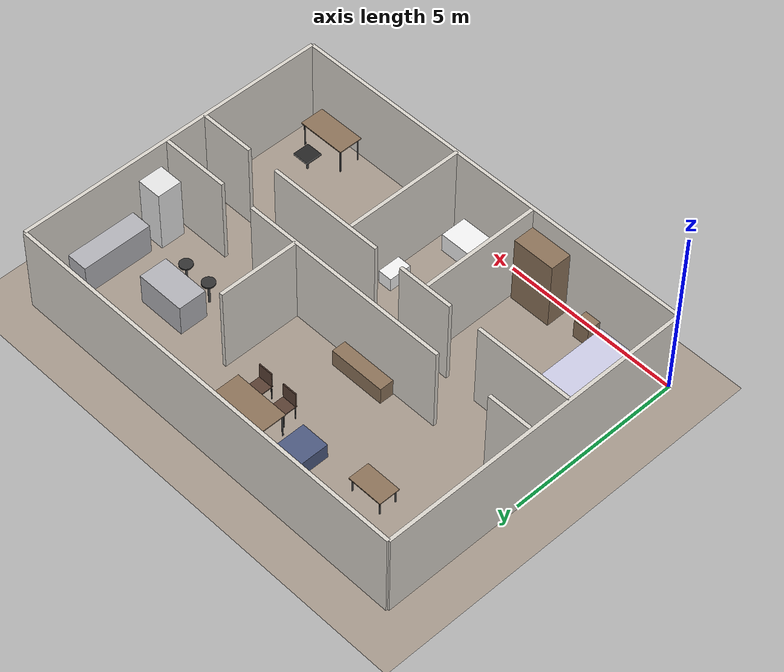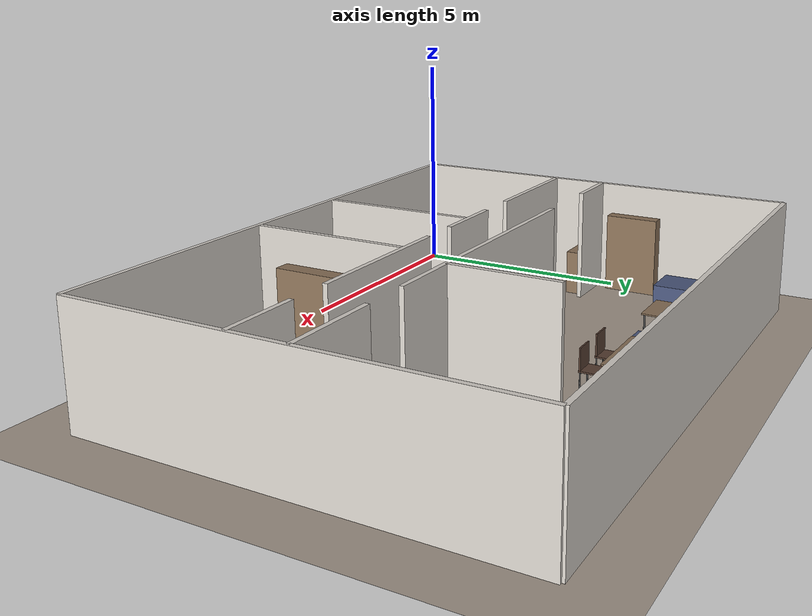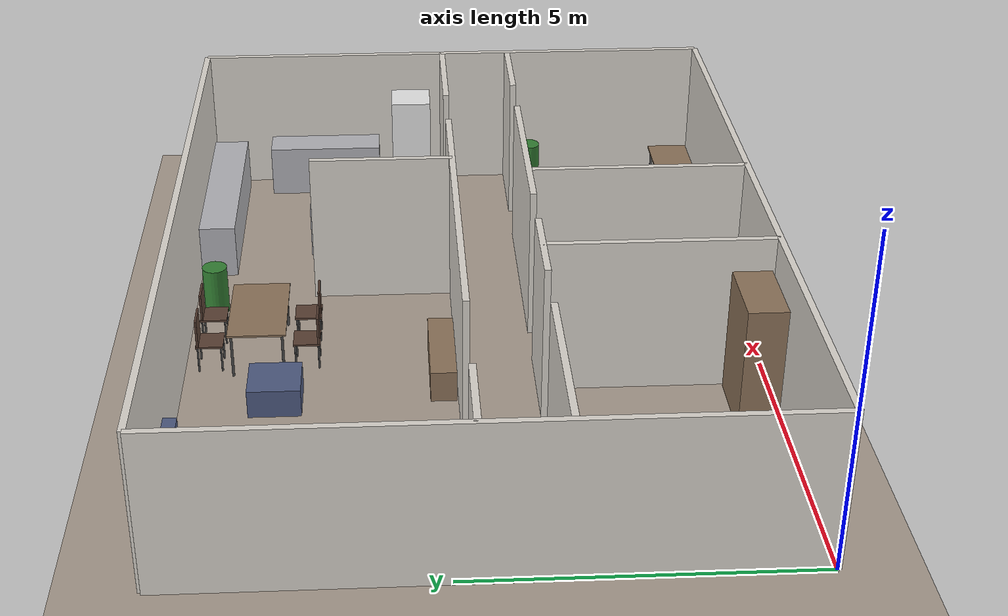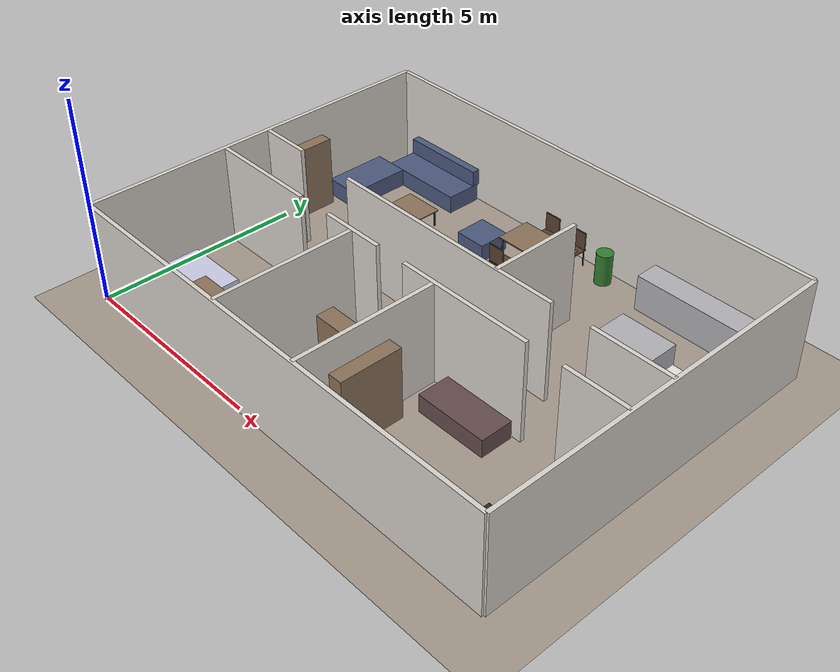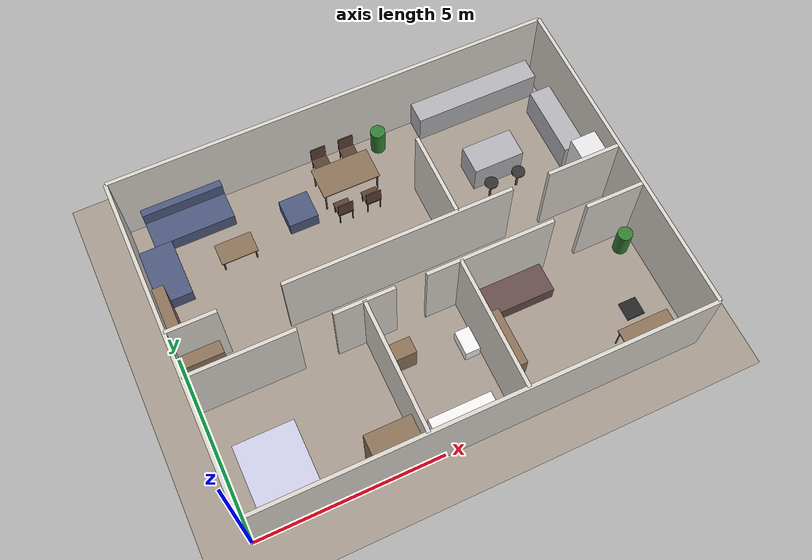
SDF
<?xml version="1.0"?>
<!-- GENERATED by worlds/generate_flat.py - edit that, not this.
     A furnished 12 x 9 m flat. Spawn the robot in the corridor at (6.0, 4.1). -->
<sdf version="1.9">
  <world name="flat">
    <!-- 4 ms steps; see house.sdf for why. -->
    <physics name="4ms" type="ignored">
      <max_step_size>0.004</max_step_size>
      <real_time_factor>1.0</real_time_factor>
    </physics>
    <plugin filename="gz-sim-physics-system" name="gz::sim::systems::Physics"/>
    <plugin filename="gz-sim-user-commands-system" name="gz::sim::systems::UserCommands"/>
    <plugin filename="gz-sim-scene-broadcaster-system" name="gz::sim::systems::SceneBroadcaster"/>
    <plugin filename="gz-sim-sensors-system" name="gz::sim::systems::Sensors">
      <render_engine>ogre2</render_engine>
    </plugin>
    <plugin filename="gz-sim-imu-system" name="gz::sim::systems::Imu"/>

    <light type="directional" name="sun">
      <cast_shadows>true</cast_shadows>
      <pose>6 4.5 10 0 0 0</pose>
      <diffuse>0.9 0.9 0.9 1</diffuse>
      <specular>0.2 0.2 0.2 1</specular>
      <direction>-0.5 0.3 -0.9</direction>
    </light>

    <model name="floor">
      <static>true</static>
      <link name="link">
        <collision name="c"><geometry><plane><normal>0 0 1</normal><size>30 30</size></plane></geometry></collision>
        <visual name="v">
          <geometry><plane><normal>0 0 1</normal><size>30 30</size></plane></geometry>
          <material><ambient>0.6 0.55 0.5 1</ambient><diffuse>0.65 0.6 0.55 1</diffuse></material>
        </visual>
      </link>
    </model>

    <model name="flat">
      <static>true</static>
      <link name="outer_s_0">
        <pose>6.000 0.000 1.250 0 0 0</pose>
        <collision name="c"><geometry><box><size>12.000 0.100 2.500</size></box></geometry></collision>
        <visual name="v"><geometry><box><size>12.000 0.100 2.500</size></box></geometry><material><ambient>0.85 0.83 0.80 1</ambient><diffuse>0.85 0.83 0.80 1</diffuse></material></visual>
      </link>
      <link name="outer_n_0">
        <pose>6.000 9.000 1.250 0 0 0</pose>
        <collision name="c"><geometry><box><size>12.000 0.100 2.500</size></box></geometry></collision>
        <visual name="v"><geometry><box><size>12.000 0.100 2.500</size></box></geometry><material><ambient>0.85 0.83 0.80 1</ambient><diffuse>0.85 0.83 0.80 1</diffuse></material></visual>
      </link>
      <link name="outer_w_0">
        <pose>0.000 4.500 1.250 0 0 0</pose>
        <collision name="c"><geometry><box><size>0.100 9.000 2.500</size></box></geometry></collision>
        <visual name="v"><geometry><box><size>0.100 9.000 2.500</size></box></geometry><material><ambient>0.85 0.83 0.80 1</ambient><diffuse>0.85 0.83 0.80 1</diffuse></material></visual>
      </link>
      <link name="outer_e_0">
        <pose>12.000 4.500 1.250 0 0 0</pose>
        <collision name="c"><geometry><box><size>0.100 9.000 2.500</size></box></geometry></collision>
        <visual name="v"><geometry><box><size>0.100 9.000 2.500</size></box></geometry><material><ambient>0.85 0.83 0.80 1</ambient><diffuse>0.85 0.83 0.80 1</diffuse></material></visual>
      </link>
      <link name="corridor_s_0">
        <pose>1.400 3.500 1.250 0 0 0</pose>
        <collision name="c"><geometry><box><size>2.800 0.100 2.500</size></box></geometry></collision>
        <visual name="v"><geometry><box><size>2.800 0.100 2.500</size></box></geometry><material><ambient>0.85 0.83 0.80 1</ambient><diffuse>0.85 0.83 0.80 1</diffuse></material></visual>
      </link>
      <link name="corridor_s_1">
        <pose>4.500 3.500 1.250 0 0 0</pose>
        <collision name="c"><geometry><box><size>1.600 0.100 2.500</size></box></geometry></collision>
        <visual name="v"><geometry><box><size>1.600 0.100 2.500</size></box></geometry><material><ambient>0.85 0.83 0.80 1</ambient><diffuse>0.85 0.83 0.80 1</diffuse></material></visual>
      </link>
      <link name="corridor_s_2">
        <pose>7.800 3.500 1.250 0 0 0</pose>
        <collision name="c"><geometry><box><size>3.400 0.100 2.500</size></box></geometry></collision>
        <visual name="v"><geometry><box><size>3.400 0.100 2.500</size></box></geometry><material><ambient>0.85 0.83 0.80 1</ambient><diffuse>0.85 0.83 0.80 1</diffuse></material></visual>
      </link>
      <link name="corridor_s_3">
        <pose>11.200 3.500 1.250 0 0 0</pose>
        <collision name="c"><geometry><box><size>1.600 0.100 2.500</size></box></geometry></collision>
        <visual name="v"><geometry><box><size>1.600 0.100 2.500</size></box></geometry><material><ambient>0.85 0.83 0.80 1</ambient><diffuse>0.85 0.83 0.80 1</diffuse></material></visual>
      </link>
      <link name="corridor_n_0">
        <pose>0.650 4.700 1.250 0 0 0</pose>
        <collision name="c"><geometry><box><size>1.300 0.100 2.500</size></box></geometry></collision>
        <visual name="v"><geometry><box><size>1.300 0.100 2.500</size></box></geometry><material><ambient>0.85 0.83 0.80 1</ambient><diffuse>0.85 0.83 0.80 1</diffuse></material></visual>
      </link>
      <link name="corridor_n_1">
        <pose>5.950 4.700 1.250 0 0 0</pose>
        <collision name="c"><geometry><box><size>6.100 0.100 2.500</size></box></geometry></collision>
        <visual name="v"><geometry><box><size>6.100 0.100 2.500</size></box></geometry><material><ambient>0.85 0.83 0.80 1</ambient><diffuse>0.85 0.83 0.80 1</diffuse></material></visual>
      </link>
      <link name="corridor_n_2">
        <pose>11.000 4.700 1.250 0 0 0</pose>
        <collision name="c"><geometry><box><size>2.000 0.100 2.500</size></box></geometry></collision>
        <visual name="v"><geometry><box><size>2.000 0.100 2.500</size></box></geometry><material><ambient>0.85 0.83 0.80 1</ambient><diffuse>0.85 0.83 0.80 1</diffuse></material></visual>
      </link>
      <link name="bed_bath_0">
        <pose>4.500 1.750 1.250 0 0 0</pose>
        <collision name="c"><geometry><box><size>0.100 3.500 2.500</size></box></geometry></collision>
        <visual name="v"><geometry><box><size>0.100 3.500 2.500</size></box></geometry><material><ambient>0.85 0.83 0.80 1</ambient><diffuse>0.85 0.83 0.80 1</diffuse></material></visual>
      </link>
      <link name="bath_office_0">
        <pose>7.000 1.750 1.250 0 0 0</pose>
        <collision name="c"><geometry><box><size>0.100 3.500 2.500</size></box></geometry></collision>
        <visual name="v"><geometry><box><size>0.100 3.500 2.500</size></box></geometry><material><ambient>0.85 0.83 0.80 1</ambient><diffuse>0.85 0.83 0.80 1</diffuse></material></visual>
      </link>
      <link name="living_kitchen_0">
        <pose>7.500 5.850 1.250 0 0 0</pose>
        <collision name="c"><geometry><box><size>0.100 2.300 2.500</size></box></geometry></collision>
        <visual name="v"><geometry><box><size>0.100 2.300 2.500</size></box></geometry><material><ambient>0.85 0.83 0.80 1</ambient><diffuse>0.85 0.83 0.80 1</diffuse></material></visual>
      </link>
      <link name="sofa_long">
        <pose>1.600 8.450 0.225 0 0 0</pose>
        <collision name="c"><geometry><box><size>2.200 0.900 0.450</size></box></geometry></collision>
        <visual name="v"><geometry><box><size>2.200 0.900 0.450</size></box></geometry><material><ambient>0.30 0.35 0.50 1</ambient><diffuse>0.30 0.35 0.50 1</diffuse></material></visual>
      </link>
      <link name="sofa_long_back">
        <pose>1.600 8.850 0.650 0 0 0</pose>
        <collision name="c"><geometry><box><size>2.200 0.200 0.400</size></box></geometry></collision>
        <visual name="v"><geometry><box><size>2.200 0.200 0.400</size></box></geometry><material><ambient>0.30 0.35 0.50 1</ambient><diffuse>0.30 0.35 0.50 1</diffuse></material></visual>
      </link>
      <link name="sofa_side">
        <pose>0.500 7.200 0.225 0 0 0</pose>
        <collision name="c"><geometry><box><size>0.900 1.600 0.450</size></box></geometry></collision>
        <visual name="v"><geometry><box><size>0.900 1.600 0.450</size></box></geometry><material><ambient>0.30 0.35 0.50 1</ambient><diffuse>0.30 0.35 0.50 1</diffuse></material></visual>
      </link>
      <link name="coffee_table_top">
        <pose>2.400 7.100 0.435 0 0 0</pose>
        <collision name="c"><geometry><box><size>1.000 0.600 0.030</size></box></geometry></collision>
        <visual name="v"><geometry><box><size>1.000 0.600 0.030</size></box></geometry><material><ambient>0.55 0.45 0.35 1</ambient><diffuse>0.55 0.45 0.35 1</diffuse></material></visual>
      </link>
      <link name="coffee_table_leg0">
        <pose>2.840 7.340 0.210 0 0 0</pose>
        <collision name="c"><geometry><cylinder><radius>0.020</radius><length>0.420</length></cylinder></geometry></collision>
        <visual name="v"><geometry><cylinder><radius>0.020</radius><length>0.420</length></cylinder></geometry><material><ambient>0.30 0.30 0.30 1</ambient><diffuse>0.30 0.30 0.30 1</diffuse></material></visual>
      </link>
      <link name="coffee_table_leg1">
        <pose>1.960 7.340 0.210 0 0 0</pose>
        <collision name="c"><geometry><cylinder><radius>0.020</radius><length>0.420</length></cylinder></geometry></collision>
        <visual name="v"><geometry><cylinder><radius>0.020</radius><length>0.420</length></cylinder></geometry><material><ambient>0.30 0.30 0.30 1</ambient><diffuse>0.30 0.30 0.30 1</diffuse></material></visual>
      </link>
      <link name="coffee_table_leg2">
        <pose>2.840 6.860 0.210 0 0 0</pose>
        <collision name="c"><geometry><cylinder><radius>0.020</radius><length>0.420</length></cylinder></geometry></collision>
        <visual name="v"><geometry><cylinder><radius>0.020</radius><length>0.420</length></cylinder></geometry><material><ambient>0.30 0.30 0.30 1</ambient><diffuse>0.30 0.30 0.30 1</diffuse></material></visual>
      </link>
      <link name="coffee_table_leg3">
        <pose>1.960 6.860 0.210 0 0 0</pose>
        <collision name="c"><geometry><cylinder><radius>0.020</radius><length>0.420</length></cylinder></geometry></collision>
        <visual name="v"><geometry><cylinder><radius>0.020</radius><length>0.420</length></cylinder></geometry><material><ambient>0.30 0.30 0.30 1</ambient><diffuse>0.30 0.30 0.30 1</diffuse></material></visual>
      </link>
      <link name="armchair">
        <pose>4.300 7.500 0.225 0 0 0</pose>
        <collision name="c"><geometry><box><size>0.800 0.800 0.450</size></box></geometry></collision>
        <visual name="v"><geometry><box><size>0.800 0.800 0.450</size></box></geometry><material><ambient>0.30 0.35 0.50 1</ambient><diffuse>0.30 0.35 0.50 1</diffuse></material></visual>
      </link>
      <link name="tv_stand">
        <pose>5.000 4.970 0.250 0 0 0</pose>
        <collision name="c"><geometry><box><size>1.600 0.400 0.500</size></box></geometry></collision>
        <visual name="v"><geometry><box><size>1.600 0.400 0.500</size></box></geometry><material><ambient>0.55 0.45 0.35 1</ambient><diffuse>0.55 0.45 0.35 1</diffuse></material></visual>
      </link>
      <link name="bookshelf">
        <pose>0.220 5.600 0.900 0 0 0</pose>
        <collision name="c"><geometry><box><size>0.300 1.200 1.800</size></box></geometry></collision>
        <visual name="v"><geometry><box><size>0.300 1.200 1.800</size></box></geometry><material><ambient>0.55 0.45 0.35 1</ambient><diffuse>0.55 0.45 0.35 1</diffuse></material></visual>
      </link>
      <link name="dining_table_top">
        <pose>5.800 7.800 0.735 0 0 0</pose>
        <collision name="c"><geometry><box><size>1.600 0.900 0.030</size></box></geometry></collision>
        <visual name="v"><geometry><box><size>1.600 0.900 0.030</size></box></geometry><material><ambient>0.55 0.45 0.35 1</ambient><diffuse>0.55 0.45 0.35 1</diffuse></material></visual>
      </link>
      <link name="dining_table_leg0">
        <pose>6.540 8.190 0.360 0 0 0</pose>
        <collision name="c"><geometry><cylinder><radius>0.020</radius><length>0.720</length></cylinder></geometry></collision>
        <visual name="v"><geometry><cylinder><radius>0.020</radius><length>0.720</length></cylinder></geometry><material><ambient>0.30 0.30 0.30 1</ambient><diffuse>0.30 0.30 0.30 1</diffuse></material></visual>
      </link>
      <link name="dining_table_leg1">
        <pose>5.060 8.190 0.360 0 0 0</pose>
        <collision name="c"><geometry><cylinder><radius>0.020</radius><length>0.720</length></cylinder></geometry></collision>
        <visual name="v"><geometry><cylinder><radius>0.020</radius><length>0.720</length></cylinder></geometry><material><ambient>0.30 0.30 0.30 1</ambient><diffuse>0.30 0.30 0.30 1</diffuse></material></visual>
      </link>
      <link name="dining_table_leg2">
        <pose>6.540 7.410 0.360 0 0 0</pose>
        <collision name="c"><geometry><cylinder><radius>0.020</radius><length>0.720</length></cylinder></geometry></collision>
        <visual name="v"><geometry><cylinder><radius>0.020</radius><length>0.720</length></cylinder></geometry><material><ambient>0.30 0.30 0.30 1</ambient><diffuse>0.30 0.30 0.30 1</diffuse></material></visual>
      </link>
      <link name="dining_table_leg3">
        <pose>5.060 7.410 0.360 0 0 0</pose>
        <collision name="c"><geometry><cylinder><radius>0.020</radius><length>0.720</length></cylinder></geometry></collision>
        <visual name="v"><geometry><cylinder><radius>0.020</radius><length>0.720</length></cylinder></geometry><material><ambient>0.30 0.30 0.30 1</ambient><diffuse>0.30 0.30 0.30 1</diffuse></material></visual>
      </link>
      <link name="dining_chair_n1_seat">
        <pose>5.400 8.550 0.435 0 0 0</pose>
        <collision name="c"><geometry><box><size>0.420 0.420 0.030</size></box></geometry></collision>
        <visual name="v"><geometry><box><size>0.420 0.420 0.030</size></box></geometry><material><ambient>0.35 0.25 0.20 1</ambient><diffuse>0.35 0.25 0.20 1</diffuse></material></visual>
      </link>
      <link name="dining_chair_n1_leg0">
        <pose>5.580 8.730 0.210 0 0 0</pose>
        <collision name="c"><geometry><cylinder><radius>0.015</radius><length>0.420</length></cylinder></geometry></collision>
        <visual name="v"><geometry><cylinder><radius>0.015</radius><length>0.420</length></cylinder></geometry><material><ambient>0.30 0.30 0.30 1</ambient><diffuse>0.30 0.30 0.30 1</diffuse></material></visual>
      </link>
      <link name="dining_chair_n1_leg1">
        <pose>5.220 8.730 0.210 0 0 0</pose>
        <collision name="c"><geometry><cylinder><radius>0.015</radius><length>0.420</length></cylinder></geometry></collision>
        <visual name="v"><geometry><cylinder><radius>0.015</radius><length>0.420</length></cylinder></geometry><material><ambient>0.30 0.30 0.30 1</ambient><diffuse>0.30 0.30 0.30 1</diffuse></material></visual>
      </link>
      <link name="dining_chair_n1_leg2">
        <pose>5.580 8.370 0.210 0 0 0</pose>
        <collision name="c"><geometry><cylinder><radius>0.015</radius><length>0.420</length></cylinder></geometry></collision>
        <visual name="v"><geometry><cylinder><radius>0.015</radius><length>0.420</length></cylinder></geometry><material><ambient>0.30 0.30 0.30 1</ambient><diffuse>0.30 0.30 0.30 1</diffuse></material></visual>
      </link>
      <link name="dining_chair_n1_leg3">
        <pose>5.220 8.370 0.210 0 0 0</pose>
        <collision name="c"><geometry><cylinder><radius>0.015</radius><length>0.420</length></cylinder></geometry></collision>
        <visual name="v"><geometry><cylinder><radius>0.015</radius><length>0.420</length></cylinder></geometry><material><ambient>0.30 0.30 0.30 1</ambient><diffuse>0.30 0.30 0.30 1</diffuse></material></visual>
      </link>
      <link name="dining_chair_n1_back">
        <pose>5.400 8.730 0.675 0 0 0</pose>
        <collision name="c"><geometry><box><size>0.420 0.030 0.450</size></box></geometry></collision>
        <visual name="v"><geometry><box><size>0.420 0.030 0.450</size></box></geometry><material><ambient>0.35 0.25 0.20 1</ambient><diffuse>0.35 0.25 0.20 1</diffuse></material></visual>
      </link>
      <link name="dining_chair_n2_seat">
        <pose>6.200 8.550 0.435 0 0 0</pose>
        <collision name="c"><geometry><box><size>0.420 0.420 0.030</size></box></geometry></collision>
        <visual name="v"><geometry><box><size>0.420 0.420 0.030</size></box></geometry><material><ambient>0.35 0.25 0.20 1</ambient><diffuse>0.35 0.25 0.20 1</diffuse></material></visual>
      </link>
      <link name="dining_chair_n2_leg0">
        <pose>6.380 8.730 0.210 0 0 0</pose>
        <collision name="c"><geometry><cylinder><radius>0.015</radius><length>0.420</length></cylinder></geometry></collision>
        <visual name="v"><geometry><cylinder><radius>0.015</radius><length>0.420</length></cylinder></geometry><material><ambient>0.30 0.30 0.30 1</ambient><diffuse>0.30 0.30 0.30 1</diffuse></material></visual>
      </link>
      <link name="dining_chair_n2_leg1">
        <pose>6.020 8.730 0.210 0 0 0</pose>
        <collision name="c"><geometry><cylinder><radius>0.015</radius><length>0.420</length></cylinder></geometry></collision>
        <visual name="v"><geometry><cylinder><radius>0.015</radius><length>0.420</length></cylinder></geometry><material><ambient>0.30 0.30 0.30 1</ambient><diffuse>0.30 0.30 0.30 1</diffuse></material></visual>
      </link>
      <link name="dining_chair_n2_leg2">
        <pose>6.380 8.370 0.210 0 0 0</pose>
        <collision name="c"><geometry><cylinder><radius>0.015</radius><length>0.420</length></cylinder></geometry></collision>
        <visual name="v"><geometry><cylinder><radius>0.015</radius><length>0.420</length></cylinder></geometry><material><ambient>0.30 0.30 0.30 1</ambient><diffuse>0.30 0.30 0.30 1</diffuse></material></visual>
      </link>
      <link name="dining_chair_n2_leg3">
        <pose>6.020 8.370 0.210 0 0 0</pose>
        <collision name="c"><geometry><cylinder><radius>0.015</radius><length>0.420</length></cylinder></geometry></collision>
        <visual name="v"><geometry><cylinder><radius>0.015</radius><length>0.420</length></cylinder></geometry><material><ambient>0.30 0.30 0.30 1</ambient><diffuse>0.30 0.30 0.30 1</diffuse></material></visual>
      </link>
      <link name="dining_chair_n2_back">
        <pose>6.200 8.730 0.675 0 0 0</pose>
        <collision name="c"><geometry><box><size>0.420 0.030 0.450</size></box></geometry></collision>
        <visual name="v"><geometry><box><size>0.420 0.030 0.450</size></box></geometry><material><ambient>0.35 0.25 0.20 1</ambient><diffuse>0.35 0.25 0.20 1</diffuse></material></visual>
      </link>
      <link name="dining_chair_s1_seat">
        <pose>5.400 7.050 0.435 0 0 0</pose>
        <collision name="c"><geometry><box><size>0.420 0.420 0.030</size></box></geometry></collision>
        <visual name="v"><geometry><box><size>0.420 0.420 0.030</size></box></geometry><material><ambient>0.35 0.25 0.20 1</ambient><diffuse>0.35 0.25 0.20 1</diffuse></material></visual>
      </link>
      <link name="dining_chair_s1_leg0">
        <pose>5.580 7.230 0.210 0 0 0</pose>
        <collision name="c"><geometry><cylinder><radius>0.015</radius><length>0.420</length></cylinder></geometry></collision>
        <visual name="v"><geometry><cylinder><radius>0.015</radius><length>0.420</length></cylinder></geometry><material><ambient>0.30 0.30 0.30 1</ambient><diffuse>0.30 0.30 0.30 1</diffuse></material></visual>
      </link>
      <link name="dining_chair_s1_leg1">
        <pose>5.220 7.230 0.210 0 0 0</pose>
        <collision name="c"><geometry><cylinder><radius>0.015</radius><length>0.420</length></cylinder></geometry></collision>
        <visual name="v"><geometry><cylinder><radius>0.015</radius><length>0.420</length></cylinder></geometry><material><ambient>0.30 0.30 0.30 1</ambient><diffuse>0.30 0.30 0.30 1</diffuse></material></visual>
      </link>
      <link name="dining_chair_s1_leg2">
        <pose>5.580 6.870 0.210 0 0 0</pose>
        <collision name="c"><geometry><cylinder><radius>0.015</radius><length>0.420</length></cylinder></geometry></collision>
        <visual name="v"><geometry><cylinder><radius>0.015</radius><length>0.420</length></cylinder></geometry><material><ambient>0.30 0.30 0.30 1</ambient><diffuse>0.30 0.30 0.30 1</diffuse></material></visual>
      </link>
      <link name="dining_chair_s1_leg3">
        <pose>5.220 6.870 0.210 0 0 0</pose>
        <collision name="c"><geometry><cylinder><radius>0.015</radius><length>0.420</length></cylinder></geometry></collision>
        <visual name="v"><geometry><cylinder><radius>0.015</radius><length>0.420</length></cylinder></geometry><material><ambient>0.30 0.30 0.30 1</ambient><diffuse>0.30 0.30 0.30 1</diffuse></material></visual>
      </link>
      <link name="dining_chair_s1_back">
        <pose>5.400 6.870 0.675 0 0 0</pose>
        <collision name="c"><geometry><box><size>0.420 0.030 0.450</size></box></geometry></collision>
        <visual name="v"><geometry><box><size>0.420 0.030 0.450</size></box></geometry><material><ambient>0.35 0.25 0.20 1</ambient><diffuse>0.35 0.25 0.20 1</diffuse></material></visual>
      </link>
      <link name="dining_chair_s2_seat">
        <pose>6.200 7.050 0.435 0 0 0</pose>
        <collision name="c"><geometry><box><size>0.420 0.420 0.030</size></box></geometry></collision>
        <visual name="v"><geometry><box><size>0.420 0.420 0.030</size></box></geometry><material><ambient>0.35 0.25 0.20 1</ambient><diffuse>0.35 0.25 0.20 1</diffuse></material></visual>
      </link>
      <link name="dining_chair_s2_leg0">
        <pose>6.380 7.230 0.210 0 0 0</pose>
        <collision name="c"><geometry><cylinder><radius>0.015</radius><length>0.420</length></cylinder></geometry></collision>
        <visual name="v"><geometry><cylinder><radius>0.015</radius><length>0.420</length></cylinder></geometry><material><ambient>0.30 0.30 0.30 1</ambient><diffuse>0.30 0.30 0.30 1</diffuse></material></visual>
      </link>
      <link name="dining_chair_s2_leg1">
        <pose>6.020 7.230 0.210 0 0 0</pose>
        <collision name="c"><geometry><cylinder><radius>0.015</radius><length>0.420</length></cylinder></geometry></collision>
        <visual name="v"><geometry><cylinder><radius>0.015</radius><length>0.420</length></cylinder></geometry><material><ambient>0.30 0.30 0.30 1</ambient><diffuse>0.30 0.30 0.30 1</diffuse></material></visual>
      </link>
      <link name="dining_chair_s2_leg2">
        <pose>6.380 6.870 0.210 0 0 0</pose>
        <collision name="c"><geometry><cylinder><radius>0.015</radius><length>0.420</length></cylinder></geometry></collision>
        <visual name="v"><geometry><cylinder><radius>0.015</radius><length>0.420</length></cylinder></geometry><material><ambient>0.30 0.30 0.30 1</ambient><diffuse>0.30 0.30 0.30 1</diffuse></material></visual>
      </link>
      <link name="dining_chair_s2_leg3">
        <pose>6.020 6.870 0.210 0 0 0</pose>
        <collision name="c"><geometry><cylinder><radius>0.015</radius><length>0.420</length></cylinder></geometry></collision>
        <visual name="v"><geometry><cylinder><radius>0.015</radius><length>0.420</length></cylinder></geometry><material><ambient>0.30 0.30 0.30 1</ambient><diffuse>0.30 0.30 0.30 1</diffuse></material></visual>
      </link>
      <link name="dining_chair_s2_back">
        <pose>6.200 6.870 0.675 0 0 0</pose>
        <collision name="c"><geometry><box><size>0.420 0.030 0.450</size></box></geometry></collision>
        <visual name="v"><geometry><box><size>0.420 0.030 0.450</size></box></geometry><material><ambient>0.35 0.25 0.20 1</ambient><diffuse>0.35 0.25 0.20 1</diffuse></material></visual>
      </link>
      <link name="plant_living">
        <pose>7.100 8.600 0.400 0 0 0</pose>
        <collision name="c"><geometry><cylinder><radius>0.200</radius><length>0.800</length></cylinder></geometry></collision>
        <visual name="v"><geometry><cylinder><radius>0.200</radius><length>0.800</length></cylinder></geometry><material><ambient>0.20 0.50 0.20 1</ambient><diffuse>0.20 0.50 0.20 1</diffuse></material></visual>
      </link>
      <link name="counter_north">
        <pose>10.000 8.650 0.450 0 0 0</pose>
        <collision name="c"><geometry><box><size>3.500 0.600 0.900</size></box></geometry></collision>
        <visual name="v"><geometry><box><size>3.500 0.600 0.900</size></box></geometry><material><ambient>0.70 0.70 0.72 1</ambient><diffuse>0.70 0.70 0.72 1</diffuse></material></visual>
      </link>
      <link name="counter_east">
        <pose>11.650 6.900 0.450 0 0 0</pose>
        <collision name="c"><geometry><box><size>0.600 2.000 0.900</size></box></geometry></collision>
        <visual name="v"><geometry><box><size>0.600 2.000 0.900</size></box></geometry><material><ambient>0.70 0.70 0.72 1</ambient><diffuse>0.70 0.70 0.72 1</diffuse></material></visual>
      </link>
      <link name="island">
        <pose>9.600 6.700 0.450 0 0 0</pose>
        <collision name="c"><geometry><box><size>1.400 0.800 0.900</size></box></geometry></collision>
        <visual name="v"><geometry><box><size>1.400 0.800 0.900</size></box></geometry><material><ambient>0.70 0.70 0.72 1</ambient><diffuse>0.70 0.70 0.72 1</diffuse></material></visual>
      </link>
      <link name="fridge">
        <pose>11.600 5.300 0.900 0 0 0</pose>
        <collision name="c"><geometry><box><size>0.700 0.700 1.800</size></box></geometry></collision>
        <visual name="v"><geometry><box><size>0.700 0.700 1.800</size></box></geometry><material><ambient>0.90 0.90 0.90 1</ambient><diffuse>0.90 0.90 0.90 1</diffuse></material></visual>
      </link>
      <link name="stool_1_post">
        <pose>9.200 5.950 0.325 0 0 0</pose>
        <collision name="c"><geometry><cylinder><radius>0.030</radius><length>0.650</length></cylinder></geometry></collision>
        <visual name="v"><geometry><cylinder><radius>0.030</radius><length>0.650</length></cylinder></geometry><material><ambient>0.30 0.30 0.30 1</ambient><diffuse>0.30 0.30 0.30 1</diffuse></material></visual>
      </link>
      <link name="stool_1_seat">
        <pose>9.200 5.950 0.670 0 0 0</pose>
        <collision name="c"><geometry><cylinder><radius>0.180</radius><length>0.040</length></cylinder></geometry></collision>
        <visual name="v"><geometry><cylinder><radius>0.180</radius><length>0.040</length></cylinder></geometry><material><ambient>0.20 0.20 0.20 1</ambient><diffuse>0.20 0.20 0.20 1</diffuse></material></visual>
      </link>
      <link name="stool_2_post">
        <pose>10.000 5.950 0.325 0 0 0</pose>
        <collision name="c"><geometry><cylinder><radius>0.030</radius><length>0.650</length></cylinder></geometry></collision>
        <visual name="v"><geometry><cylinder><radius>0.030</radius><length>0.650</length></cylinder></geometry><material><ambient>0.30 0.30 0.30 1</ambient><diffuse>0.30 0.30 0.30 1</diffuse></material></visual>
      </link>
      <link name="stool_2_seat">
        <pose>10.000 5.950 0.670 0 0 0</pose>
        <collision name="c"><geometry><cylinder><radius>0.180</radius><length>0.040</length></cylinder></geometry></collision>
        <visual name="v"><geometry><cylinder><radius>0.180</radius><length>0.040</length></cylinder></geometry><material><ambient>0.20 0.20 0.20 1</ambient><diffuse>0.20 0.20 0.20 1</diffuse></material></visual>
      </link>
      <link name="shoe_cabinet">
        <pose>0.600 4.470 0.500 0 0 0</pose>
        <collision name="c"><geometry><box><size>1.000 0.350 1.000</size></box></geometry></collision>
        <visual name="v"><geometry><box><size>1.000 0.350 1.000</size></box></geometry><material><ambient>0.55 0.45 0.35 1</ambient><diffuse>0.55 0.45 0.35 1</diffuse></material></visual>
      </link>
      <link name="bed">
        <pose>1.200 1.200 0.250 0 0 0</pose>
        <collision name="c"><geometry><box><size>1.600 2.000 0.500</size></box></geometry></collision>
        <visual name="v"><geometry><box><size>1.600 2.000 0.500</size></box></geometry><material><ambient>0.80 0.80 0.90 1</ambient><diffuse>0.80 0.80 0.90 1</diffuse></material></visual>
      </link>
      <link name="nightstand">
        <pose>2.350 0.300 0.275 0 0 0</pose>
        <collision name="c"><geometry><box><size>0.450 0.400 0.550</size></box></geometry></collision>
        <visual name="v"><geometry><box><size>0.450 0.400 0.550</size></box></geometry><material><ambient>0.55 0.45 0.35 1</ambient><diffuse>0.55 0.45 0.35 1</diffuse></material></visual>
      </link>
      <link name="wardrobe">
        <pose>3.800 0.400 1.000 0 0 0</pose>
        <collision name="c"><geometry><box><size>1.200 0.600 2.000</size></box></geometry></collision>
        <visual name="v"><geometry><box><size>1.200 0.600 2.000</size></box></geometry><material><ambient>0.55 0.45 0.35 1</ambient><diffuse>0.55 0.45 0.35 1</diffuse></material></visual>
      </link>
      <link name="bathtub">
        <pose>5.750 0.450 0.275 0 0 0</pose>
        <collision name="c"><geometry><box><size>1.700 0.750 0.550</size></box></geometry></collision>
        <visual name="v"><geometry><box><size>1.700 0.750 0.550</size></box></geometry><material><ambient>0.95 0.95 0.95 1</ambient><diffuse>0.95 0.95 0.95 1</diffuse></material></visual>
      </link>
      <link name="toilet">
        <pose>6.700 2.300 0.200 0 0 0</pose>
        <collision name="c"><geometry><box><size>0.400 0.650 0.400</size></box></geometry></collision>
        <visual name="v"><geometry><box><size>0.400 0.650 0.400</size></box></geometry><material><ambient>0.95 0.95 0.95 1</ambient><diffuse>0.95 0.95 0.95 1</diffuse></material></visual>
      </link>
      <link name="sink_cabinet">
        <pose>4.950 2.620 0.425 0 0 0</pose>
        <collision name="c"><geometry><box><size>0.800 0.450 0.850</size></box></geometry></collision>
        <visual name="v"><geometry><box><size>0.800 0.450 0.850</size></box></geometry><material><ambient>0.55 0.45 0.35 1</ambient><diffuse>0.55 0.45 0.35 1</diffuse></material></visual>
      </link>
      <link name="desk_top">
        <pose>10.800 0.500 0.735 0 0 0</pose>
        <collision name="c"><geometry><box><size>1.400 0.700 0.030</size></box></geometry></collision>
        <visual name="v"><geometry><box><size>1.400 0.700 0.030</size></box></geometry><material><ambient>0.55 0.45 0.35 1</ambient><diffuse>0.55 0.45 0.35 1</diffuse></material></visual>
      </link>
      <link name="desk_leg0">
        <pose>11.440 0.790 0.360 0 0 0</pose>
        <collision name="c"><geometry><cylinder><radius>0.020</radius><length>0.720</length></cylinder></geometry></collision>
        <visual name="v"><geometry><cylinder><radius>0.020</radius><length>0.720</length></cylinder></geometry><material><ambient>0.30 0.30 0.30 1</ambient><diffuse>0.30 0.30 0.30 1</diffuse></material></visual>
      </link>
      <link name="desk_leg1">
        <pose>10.160 0.790 0.360 0 0 0</pose>
        <collision name="c"><geometry><cylinder><radius>0.020</radius><length>0.720</length></cylinder></geometry></collision>
        <visual name="v"><geometry><cylinder><radius>0.020</radius><length>0.720</length></cylinder></geometry><material><ambient>0.30 0.30 0.30 1</ambient><diffuse>0.30 0.30 0.30 1</diffuse></material></visual>
      </link>
      <link name="desk_leg2">
        <pose>11.440 0.210 0.360 0 0 0</pose>
        <collision name="c"><geometry><cylinder><radius>0.020</radius><length>0.720</length></cylinder></geometry></collision>
        <visual name="v"><geometry><cylinder><radius>0.020</radius><length>0.720</length></cylinder></geometry><material><ambient>0.30 0.30 0.30 1</ambient><diffuse>0.30 0.30 0.30 1</diffuse></material></visual>
      </link>
      <link name="desk_leg3">
        <pose>10.160 0.210 0.360 0 0 0</pose>
        <collision name="c"><geometry><cylinder><radius>0.020</radius><length>0.720</length></cylinder></geometry></collision>
        <visual name="v"><geometry><cylinder><radius>0.020</radius><length>0.720</length></cylinder></geometry><material><ambient>0.30 0.30 0.30 1</ambient><diffuse>0.30 0.30 0.30 1</diffuse></material></visual>
      </link>
      <link name="office_chair_post">
        <pose>10.800 1.300 0.225 0 0 0</pose>
        <collision name="c"><geometry><cylinder><radius>0.030</radius><length>0.450</length></cylinder></geometry></collision>
        <visual name="v"><geometry><cylinder><radius>0.030</radius><length>0.450</length></cylinder></geometry><material><ambient>0.30 0.30 0.30 1</ambient><diffuse>0.30 0.30 0.30 1</diffuse></material></visual>
      </link>
      <link name="office_chair_seat">
        <pose>10.800 1.300 0.475 0 0 0</pose>
        <collision name="c"><geometry><box><size>0.480 0.480 0.050</size></box></geometry></collision>
        <visual name="v"><geometry><box><size>0.480 0.480 0.050</size></box></geometry><material><ambient>0.15 0.15 0.15 1</ambient><diffuse>0.15 0.15 0.15 1</diffuse></material></visual>
      </link>
      <link name="office_shelf">
        <pose>7.250 1.500 0.900 0 0 0</pose>
        <collision name="c"><geometry><box><size>0.350 1.500 1.800</size></box></geometry></collision>
        <visual name="v"><geometry><box><size>0.350 1.500 1.800</size></box></geometry><material><ambient>0.55 0.45 0.35 1</ambient><diffuse>0.55 0.45 0.35 1</diffuse></material></visual>
      </link>
      <link name="office_couch">
        <pose>8.400 3.000 0.225 0 0 0</pose>
        <collision name="c"><geometry><box><size>1.800 0.800 0.450</size></box></geometry></collision>
        <visual name="v"><geometry><box><size>1.800 0.800 0.450</size></box></geometry><material><ambient>0.40 0.30 0.30 1</ambient><diffuse>0.40 0.30 0.30 1</diffuse></material></visual>
      </link>
      <link name="plant_office">
        <pose>11.600 3.100 0.400 0 0 0</pose>
        <collision name="c"><geometry><cylinder><radius>0.200</radius><length>0.800</length></cylinder></geometry></collision>
        <visual name="v"><geometry><cylinder><radius>0.200</radius><length>0.800</length></cylinder></geometry><material><ambient>0.20 0.50 0.20 1</ambient><diffuse>0.20 0.50 0.20 1</diffuse></material></visual>
      </link>
    </model>
  </world>
</sdf>
